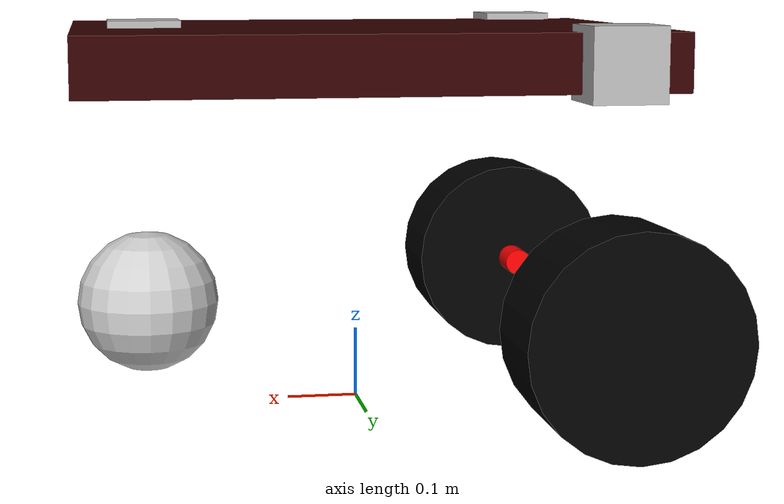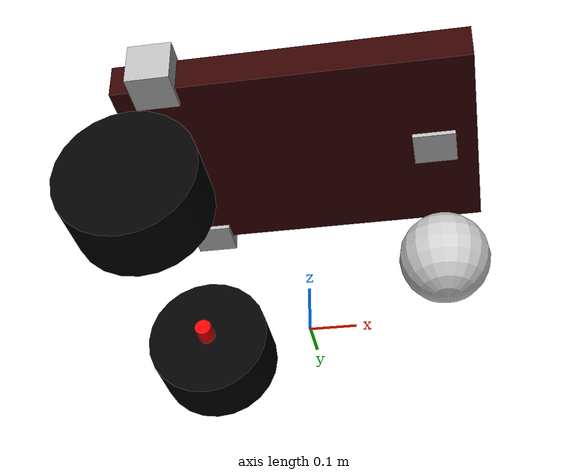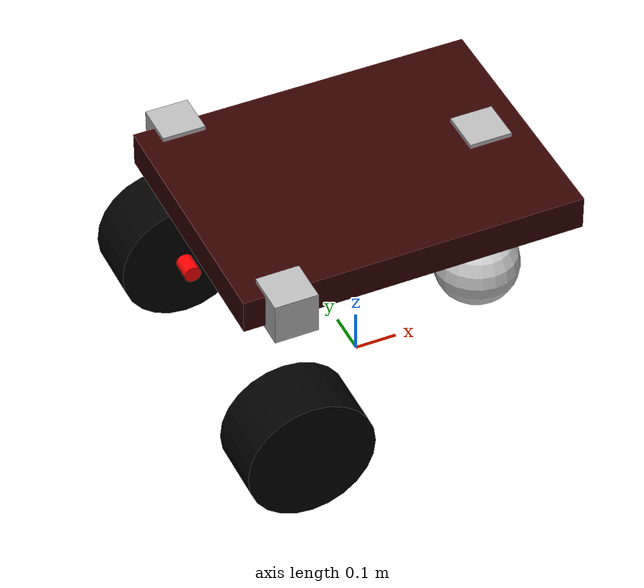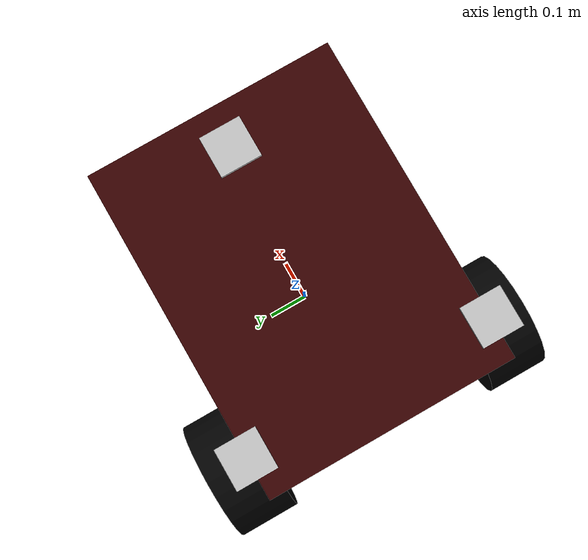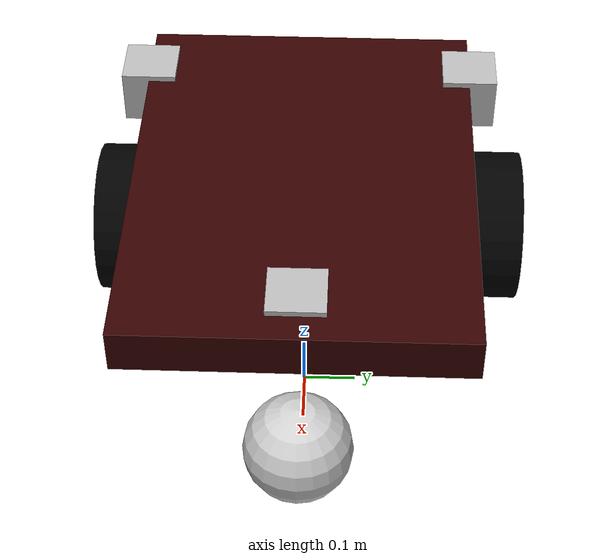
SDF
<sdf version="1.8">
  <model name="grey_robot">
    <self_collide>false</self_collide>

    <link name="chassis">
      <pose>0 0 0.5 0 0 0</pose>
      <inertial>
        <mass>15.0</mass>
        <inertia><ixx>0.5</ixx><iyy>0.5</iyy><izz>0.5</izz></inertia>
      </inertial>
      <collision name="chassis_collision">
        <geometry><box><size>0.8 0.6 0.08</size></box></geometry>
      </collision>
      <visual name="visual">
        <geometry><box><size>0.8 0.6 0.08</size></box></geometry>
        <material><ambient>1 0 0 1</ambient><diffuse>0.2 0 0 1</diffuse></material>
      </visual>
    </link>

    <link name="body_L">
      <pose>-0.3 0.3 0.5 0 0 0</pose>
      <visual name="visual"><geometry><box><size>0.1 0.1 0.1</size></box></geometry></visual>
    </link>

    <link name="axle_L">
      <pose>-0.3 0.3 0.15 1.5708 0 0</pose>
      <visual name="visual">
        <geometry><cylinder><radius>0.02</radius><length>0.15</length></cylinder></geometry>
        <material><ambient>1 0 0 1</ambient></material>
      </visual>
    </link>

    <link name="tire_L">
      <pose>-0.3 0.35 0.15 1.5708 0 0</pose>
      <collision name="collision">
        <geometry><cylinder><radius>0.15</radius><length>0.15</length></cylinder></geometry>
        <surface><friction><ode><mu>1.0</mu><mu2>1.0</mu2></ode></friction></surface>
      </collision>
      <visual name="visual">
        <geometry><cylinder><radius>0.15</radius><length>0.15</length></cylinder></geometry>
        <material><ambient>0 0 0 1</ambient></material>
      </visual>
    </link>

    <link name="body_R">
      <pose>-0.3 -0.3 0.5 0 0 0</pose>
      <visual name="visual"><geometry><box><size>0.1 0.1 0.1</size></box></geometry></visual>
    </link>

    <link name="axle_R">
      <pose>-0.3 -0.3 0.15 1.5708 0 0</pose>
      <visual name="visual">
        <geometry><cylinder><radius>0.02</radius><length>0.15</length></cylinder></geometry>
        <material><ambient>1 0 0 1</ambient></material>
      </visual>
    </link>

    <link name="tire_R">
      <pose>-0.3 -0.35 0.15 1.5708 0 0</pose>
      <collision name="collision">
        <geometry><cylinder><radius>0.15</radius><length>0.15</length></cylinder></geometry>
        <surface><friction><ode><mu>1.0</mu><mu2>1.0</mu2></ode></friction></surface>
      </collision>
      <visual name="visual">
        <geometry><cylinder><radius>0.15</radius><length>0.15</length></cylinder></geometry>
        <material><ambient>0 0 0 1</ambient></material>
      </visual>
    </link>

    <link name="caster_housing">
      <pose>0.3 0 0.5 0 0 0</pose>
      <inertial><mass>0.5</mass><inertia><ixx>0.01</ixx><iyy>0.01</iyy><izz>0.01</izz></inertia></inertial>
      <visual name="visual"><geometry><box><size>0.1 0.1 0.1</size></box></geometry></visual>
    </link>

    <link name="caster_ball">
      <pose>0.3 0 0.15 0 0 0</pose>
      <inertial><mass>0.5</mass><inertia><ixx>0.01</ixx><iyy>0.01</iyy><izz>0.01</izz></inertia></inertial>
      <collision name="collision">
        <geometry><sphere><radius>0.1</radius></sphere></geometry>
        <surface><friction><ode><mu>0.0</mu><mu2>0.0</mu2></ode></friction></surface>
      </collision>
      <visual name="visual">
        <geometry><sphere><radius>0.1</radius></sphere></geometry>
        <material><ambient>0.8 0.8 0.8 1</ambient></material>
      </visual>
    </link>

    <joint name="ch_to_L" type="fixed"><parent>chassis</parent><child>body_L</child></joint>
    <joint name="ch_to_R" type="fixed"><parent>chassis</parent><child>body_R</child></joint>
    <joint name="ch_to_C" type="fixed"><parent>chassis</parent><child>caster_housing</child></joint>

#############################################################################################
#SUSPENSION
###########################################################################################

    <joint name="suspension_L" type="prismatic">
      <parent>body_L</parent><child>axle_L</child>
      <axis>
        <xyz expressed_in="__model__">0 0 1</xyz>
        <limit><lower>-0.1</lower><upper>0.1</upper></limit>
        <dynamics>
          <spring_stiffness>800.0</spring_stiffness> <damping>60.0</damping> <spring_reference>0.05</spring_reference>
        </dynamics>
      </axis>
    </joint>

    <joint name="suspension_R" type="prismatic">
      <parent>body_R</parent><child>axle_R</child>
      <axis>
        <xyz expressed_in="__model__">0 0 1</xyz>
        <limit><lower>-0.1</lower><upper>0.1</upper></limit>
        <dynamics>
          <spring_stiffness>800.0</spring_stiffness> <damping>60.0</damping> <spring_reference>0.05</spring_reference>
        </dynamics>
      </axis>
    </joint>

    <joint name="suspension_caster" type="prismatic">
      <parent>caster_housing</parent>
      <child>caster_ball</child>
      <axis>
        <xyz expressed_in="__model__">0 0 1</xyz>
        <limit><lower>-0.05</lower><upper>0.05</upper></limit>
        <dynamics>
          <spring_stiffness>800.0</spring_stiffness>
          <damping>40.0</damping>
          <spring_reference>0.04</spring_reference>
        </dynamics>
      </axis>
    </joint>

#############################################################################################
#SUSPENSION
###########################################################################################

    <joint name="drive_L" type="revolute">
      <parent>axle_L</parent><child>tire_L</child>
      <axis><xyz expressed_in="__model__">0 1 0</xyz></axis>
    </joint>

    <joint name="drive_R" type="revolute">
      <parent>axle_R</parent><child>tire_R</child>
      <axis><xyz expressed_in="__model__">0 1 0</xyz></axis>
    </joint>

    <plugin filename="gz-sim-diff-drive-system" name="gz::sim::systems::DiffDrive">
      <left_joint>drive_L</left_joint>
      <right_joint>drive_R</right_joint>
      <wheel_separation>0.7</wheel_separation>
      <wheel_radius>0.15</wheel_radius>
      <topic>cmd_vel</topic>

      <max_linear_acceleration>0.5</max_linear_acceleration>
      <max_angular_acceleration>1.0</max_angular_acceleration>
    </plugin>

    <plugin filename="gz-sim-joint-state-publisher-system" name="gz::sim::systems::JointStatePublisher">
      <joint_name>suspension_L</joint_name>
      <joint_name>suspension_R</joint_name>
      <joint_name>suspension_caster</joint_name>
    </plugin>
  </model>
</sdf>
